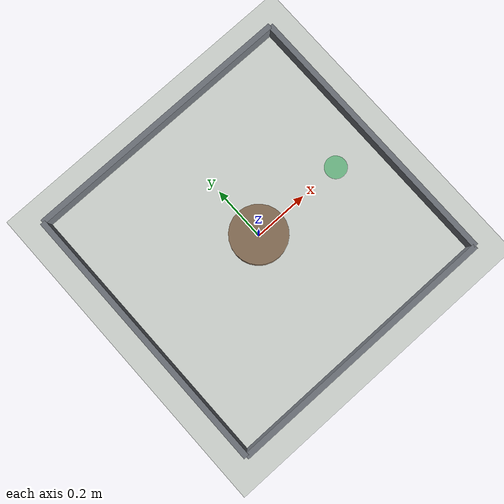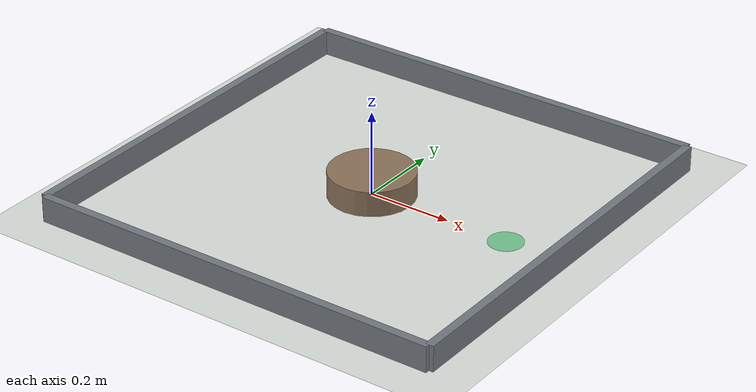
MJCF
<mujoco model="point_mass">
  <compiler angle="radian" autolimits="true"/>
  <option timestep="0.01"/>

  <default>
    <joint type="slide" damping="0.5" limited="false"/>
    <geom contype="1" conaffinity="1" friction="0 0 0"/>
    <default class="wall">
      <geom type="box" rgba=".45 .47 .5 1"/>
    </default>
  </default>

  <worldbody>
    <light pos="0 0 2" dir="0 0 -1"/>
    <geom name="floor" type="plane" size="0.6 0.6 0.05" rgba=".86 .88 .86 1" contype="0" conaffinity="0"/>
    <geom name="wall_px" class="wall" size="0.01 0.5 0.03" pos="0.5 0 0.03"/>
    <geom name="wall_nx" class="wall" size="0.01 0.5 0.03" pos="-0.5 0 0.03"/>
    <geom name="wall_py" class="wall" size="0.5 0.01 0.03" pos="0 0.5 0.03"/>
    <geom name="wall_ny" class="wall" size="0.5 0.01 0.03" pos="0 -0.5 0.03"/>
    <geom name="obstacle" type="cylinder" size="0.1 0.03" pos="0 0 0.03" rgba=".55 .45 .35 1"/>
    <site name="goal" pos="0.35 0 0.001" type="cylinder" size="0.04 0.001" rgba=".1 .7 .3 .5"/>

    <body name="agent" pos="0 0 0.03">
      <joint name="x" axis="1 0 0"/>
      <joint name="y" axis="0 1 0"/>
      <geom name="agent" type="sphere" size="0.025" mass="0.5" rgba=".85 .33 .1 1"/>
    </body>
  </worldbody>

  <actuator>
    <motor name="fx" joint="x" ctrlrange="-1 1"/>
    <motor name="fy" joint="y" ctrlrange="-1 1"/>
  </actuator>

  <keyframe>
    <key name="start" qpos="-0.35 0"/>
  </keyframe>
</mujoco>
